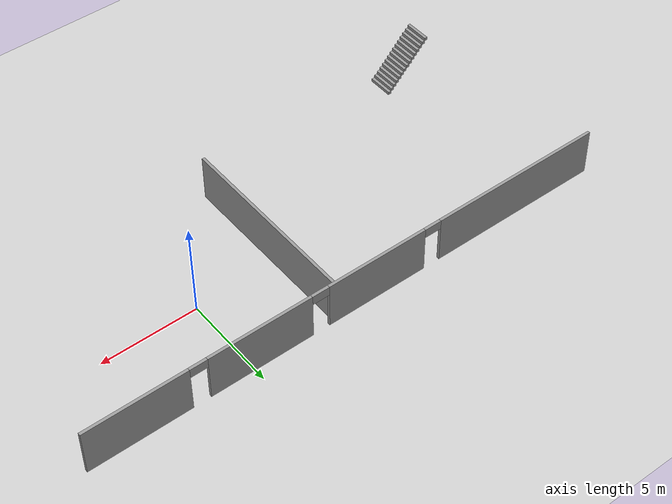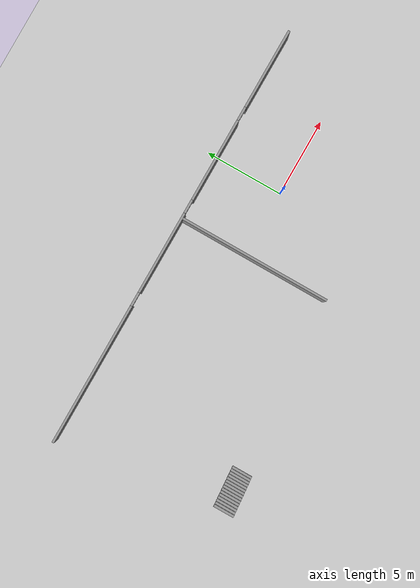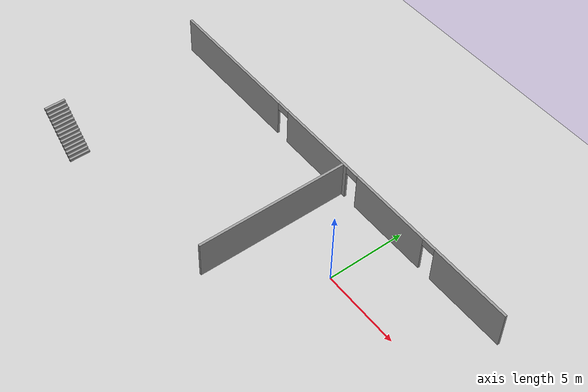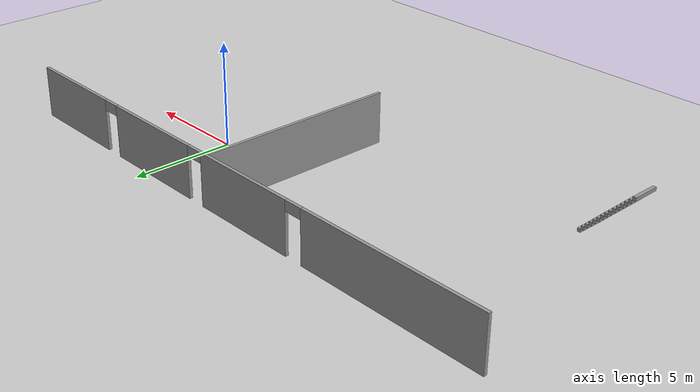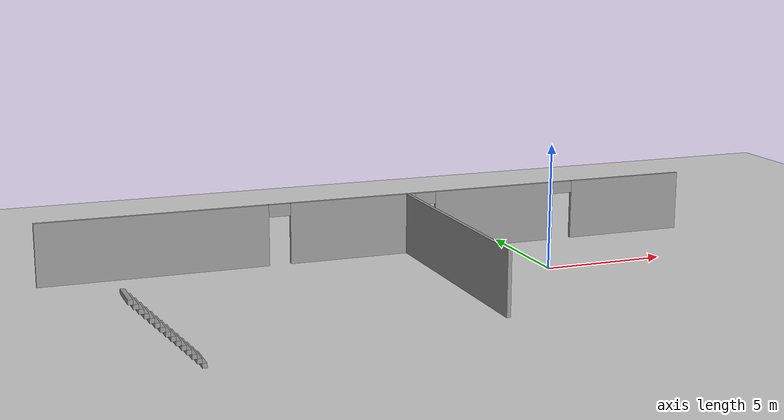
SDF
<sdf version="1.7">
 <world name="default">
  <model name="ground_plane">
   <static>1</static>
   <link name="link">
    <collision name="collision">
     <geometry><plane><normal>0 0 1</normal><size>100 100</size></plane></geometry>
     <surface><friction><ode><mu>100</mu><mu2>50</mu2></ode></friction></surface>
    </collision>
    <visual name="visual">
     <cast_shadows>0</cast_shadows>
     <geometry><plane><normal>0 0 1</normal><size>100 100</size></plane></geometry>
     <material>
      <script><uri>file://media/materials/scripts/gazebo.material</uri><name>Gazebo/Grey</name></script>
     </material>
    </visual>
   </link>
  </model>
  <model name="batimentH">
   <link name="Stairs_1">
    <visual name="Stairs_1_Visual_0">
     <pose>-10.1559 -3.96803 0.083333 0 -0 -1.5708</pose>
     <geometry><box><size>1.32885 0.162742 0.166667</size></box></geometry>
     <material>
      <script><uri>file://media/materials/scripts/gazebo.material</uri><name>Gazebo/Grey</name></script>
      <ambient>1 1 1 1</ambient>
      <shader type="pixel"/>
     </material>
     <meta><layer>0</layer></meta>
    </visual>
    <visual name="Stairs_1_Visual_1">
     <pose>-10.3187 -3.96803 0.25 0 -0 -1.5708</pose>
     <geometry><box><size>1.32885 0.162742 0.166667</size></box></geometry>
     <material>
      <script><uri>file://media/materials/scripts/gazebo.material</uri><name>Gazebo/Grey</name></script>
      <ambient>1 1 1 1</ambient>
      <shader type="pixel"/>
     </material>
     <meta><layer>0</layer></meta>
    </visual>
    <visual name="Stairs_1_Visual_2">
     <pose>-10.4814 -3.96803 0.416667 0 -0 -1.5708</pose>
     <geometry><box><size>1.32885 0.162742 0.166667</size></box></geometry>
     <material>
      <script><uri>file://media/materials/scripts/gazebo.material</uri><name>Gazebo/Grey</name></script>
      <ambient>1 1 1 1</ambient>
      <shader type="pixel"/>
     </material>
     <meta><layer>0</layer></meta>
    </visual>
    <visual name="Stairs_1_Visual_3">
     <pose>-10.6442 -3.96803 0.583333 0 -0 -1.5708</pose>
     <geometry><box><size>1.32885 0.162742 0.166667</size></box></geometry>
     <material>
      <script><uri>file://media/materials/scripts/gazebo.material</uri><name>Gazebo/Grey</name></script>
      <ambient>1 1 1 1</ambient>
      <shader type="pixel"/>
     </material>
     <meta><layer>0</layer></meta>
    </visual>
    <visual name="Stairs_1_Visual_4">
     <pose>-10.8069 -3.96803 0.75 0 -0 -1.5708</pose>
     <geometry><box><size>1.32885 0.162742 0.166667</size></box></geometry>
     <material>
      <script><uri>file://media/materials/scripts/gazebo.material</uri><name>Gazebo/Grey</name></script>
      <ambient>1 1 1 1</ambient>
      <shader type="pixel"/>
     </material>
     <meta><layer>0</layer></meta>
    </visual>
    <visual name="Stairs_1_Visual_5">
     <pose>-10.9697 -3.96803 0.916667 0 -0 -1.5708</pose>
     <geometry><box><size>1.32885 0.162742 0.166667</size></box></geometry>
     <material>
      <script><uri>file://media/materials/scripts/gazebo.material</uri><name>Gazebo/Grey</name></script>
      <ambient>1 1 1 1</ambient>
      <shader type="pixel"/>
     </material>
     <meta><layer>0</layer></meta>
    </visual>
    <visual name="Stairs_1_Visual_6">
     <pose>-11.1324 -3.96803 1.08333 0 -0 -1.5708</pose>
     <geometry><box><size>1.32885 0.162742 0.166667</size></box></geometry>
     <material>
      <script><uri>file://media/materials/scripts/gazebo.material</uri><name>Gazebo/Grey</name></script>
      <ambient>1 1 1 1</ambient>
      <shader type="pixel"/>
     </material>
     <meta><layer>0</layer></meta>
    </visual>
    <visual name="Stairs_1_Visual_7">
     <pose>-11.2951 -3.96803 1.25 0 -0 -1.5708</pose>
     <geometry><box><size>1.32885 0.162742 0.166667</size></box></geometry>
     <material>
      <script><uri>file://media/materials/scripts/gazebo.material</uri><name>Gazebo/Grey</name></script>
      <ambient>1 1 1 1</ambient>
      <shader type="pixel"/>
     </material>
     <meta><layer>0</layer></meta>
    </visual>
    <visual name="Stairs_1_Visual_8">
     <pose>-11.4579 -3.96803 1.41667 0 -0 -1.5708</pose>
     <geometry><box><size>1.32885 0.162742 0.166667</size></box></geometry>
     <material>
      <script><uri>file://media/materials/scripts/gazebo.material</uri><name>Gazebo/Grey</name></script>
      <ambient>1 1 1 1</ambient>
      <shader type="pixel"/>
     </material>
     <meta><layer>0</layer></meta>
    </visual>
    <visual name="Stairs_1_Visual_9">
     <pose>-11.6206 -3.96803 1.58333 0 -0 -1.5708</pose>
     <geometry><box><size>1.32885 0.162742 0.166667</size></box></geometry>
     <material>
      <script><uri>file://media/materials/scripts/gazebo.material</uri><name>Gazebo/Grey</name></script>
      <ambient>1 1 1 1</ambient>
      <shader type="pixel"/>
     </material>
     <meta><layer>0</layer></meta>
    </visual>
    <visual name="Stairs_1_Visual_10">
     <pose>-11.7834 -3.96803 1.75 0 -0 -1.5708</pose>
     <geometry><box><size>1.32885 0.162742 0.166667</size></box></geometry>
     <material>
      <script><uri>file://media/materials/scripts/gazebo.material</uri><name>Gazebo/Grey</name></script>
      <ambient>1 1 1 1</ambient>
      <shader type="pixel"/>
     </material>
     <meta><layer>0</layer></meta>
    </visual>
    <visual name="Stairs_1_Visual_11">
     <pose>-11.9461 -3.96803 1.91667 0 -0 -1.5708</pose>
     <geometry><box><size>1.32885 0.162742 0.166667</size></box></geometry>
     <material>
      <script><uri>file://media/materials/scripts/gazebo.material</uri><name>Gazebo/Grey</name></script>
      <ambient>1 1 1 1</ambient>
      <shader type="pixel"/>
     </material>
     <meta><layer>0</layer></meta>
    </visual>
    <visual name="Stairs_1_Visual_12">
     <pose>-12.1089 -3.96803 2.08333 0 -0 -1.5708</pose>
     <geometry><box><size>1.32885 0.162742 0.166667</size></box></geometry>
     <material>
      <script><uri>file://media/materials/scripts/gazebo.material</uri><name>Gazebo/Grey</name></script>
      <ambient>1 1 1 1</ambient>
      <shader type="pixel"/>
     </material>
     <meta><layer>0</layer></meta>
    </visual>
    <visual name="Stairs_1_Visual_13">
     <pose>-12.2716 -3.96803 2.25 0 -0 -1.5708</pose>
     <geometry><box><size>1.32885 0.162742 0.166667</size></box></geometry>
     <material>
      <script><uri>file://media/materials/scripts/gazebo.material</uri><name>Gazebo/Grey</name></script>
      <ambient>1 1 1 1</ambient>
      <shader type="pixel"/>
     </material>
     <meta><layer>0</layer></meta>
    </visual>
    <visual name="Stairs_1_Visual_14">
     <pose>-12.4343 -3.96803 2.41667 0 -0 -1.5708</pose>
     <geometry><box><size>1.32885 0.162742 0.166667</size></box></geometry>
     <material>
      <script><uri>file://media/materials/scripts/gazebo.material</uri><name>Gazebo/Grey</name></script>
      <ambient>1 1 1 1</ambient>
      <shader type="pixel"/>
     </material>
     <meta><layer>0</layer></meta>
    </visual>
    <collision name="Stairs_1_Collision_0">
     <pose>-10.1559 -3.96803 0.083333 0 0 -1.5708</pose>
     <geometry><box><size>1.32885 0.162742 0.166667</size></box></geometry>
     <surface>
      <friction>
       <ode><mu>1</mu><mu2>1</mu2><fdir1>0 0 0</fdir1><slip1>0</slip1><slip2>0</slip2></ode>
       <torsional>
        <coefficient>1</coefficient>
        <patch_radius>0</patch_radius>
        <surface_radius>0</surface_radius>
        <use_patch_radius>1</use_patch_radius>
        <ode><slip>0</slip></ode>
       </torsional>
      </friction>
      <bounce><restitution_coefficient>0</restitution_coefficient><threshold>1e+06</threshold></bounce>
      <contact>
       <collide_without_contact>0</collide_without_contact>
       <collide_without_contact_bitmask>1</collide_without_contact_bitmask>
       <collide_bitmask>1</collide_bitmask>
       <ode>
        <soft_cfm>0</soft_cfm>
        <soft_erp>0.2</soft_erp>
        <kp>1e+13</kp>
        <kd>1</kd>
        <max_vel>0.01</max_vel>
        <min_depth>0</min_depth>
       </ode>
       <bullet>
        <split_impulse>1</split_impulse>
        <split_impulse_penetration_threshold>-0.01</split_impulse_penetration_threshold>
        <soft_cfm>0</soft_cfm>
        <soft_erp>0.2</soft_erp>
        <kp>1e+13</kp>
        <kd>1</kd>
       </bullet>
      </contact>
     </surface>
    </collision>
    <collision name="Stairs_1_Collision_1">
     <pose>-10.3187 -3.96803 0.25 0 0 -1.5708</pose>
     <geometry><box><size>1.32885 0.162742 0.166667</size></box></geometry>
     <surface>
      <friction>
       <ode><mu>1</mu><mu2>1</mu2><fdir1>0 0 0</fdir1><slip1>0</slip1><slip2>0</slip2></ode>
       <torsional>
        <coefficient>1</coefficient>
        <patch_radius>0</patch_radius>
        <surface_radius>0</surface_radius>
        <use_patch_radius>1</use_patch_radius>
        <ode><slip>0</slip></ode>
       </torsional>
      </friction>
      <bounce><restitution_coefficient>0</restitution_coefficient><threshold>1e+06</threshold></bounce>
      <contact>
       <collide_without_contact>0</collide_without_contact>
       <collide_without_contact_bitmask>1</collide_without_contact_bitmask>
       <collide_bitmask>1</collide_bitmask>
       <ode>
        <soft_cfm>0</soft_cfm>
        <soft_erp>0.2</soft_erp>
        <kp>1e+13</kp>
        <kd>1</kd>
        <max_vel>0.01</max_vel>
        <min_depth>0</min_depth>
       </ode>
       <bullet>
        <split_impulse>1</split_impulse>
        <split_impulse_penetration_threshold>-0.01</split_impulse_penetration_threshold>
        <soft_cfm>0</soft_cfm>
        <soft_erp>0.2</soft_erp>
        <kp>1e+13</kp>
        <kd>1</kd>
       </bullet>
      </contact>
     </surface>
    </collision>
    <collision name="Stairs_1_Collision_2">
     <pose>-10.4814 -3.96803 0.416667 0 0 -1.5708</pose>
     <geometry><box><size>1.32885 0.162742 0.166667</size></box></geometry>
     <surface>
      <friction>
       <ode><mu>1</mu><mu2>1</mu2><fdir1>0 0 0</fdir1><slip1>0</slip1><slip2>0</slip2></ode>
       <torsional>
        <coefficient>1</coefficient>
        <patch_radius>0</patch_radius>
        <surface_radius>0</surface_radius>
        <use_patch_radius>1</use_patch_radius>
        <ode><slip>0</slip></ode>
       </torsional>
      </friction>
      <bounce><restitution_coefficient>0</restitution_coefficient><threshold>1e+06</threshold></bounce>
      <contact>
       <collide_without_contact>0</collide_without_contact>
       <collide_without_contact_bitmask>1</collide_without_contact_bitmask>
       <collide_bitmask>1</collide_bitmask>
       <ode>
        <soft_cfm>0</soft_cfm>
        <soft_erp>0.2</soft_erp>
        <kp>1e+13</kp>
        <kd>1</kd>
        <max_vel>0.01</max_vel>
        <min_depth>0</min_depth>
       </ode>
       <bullet>
        <split_impulse>1</split_impulse>
        <split_impulse_penetration_threshold>-0.01</split_impulse_penetration_threshold>
        <soft_cfm>0</soft_cfm>
        <soft_erp>0.2</soft_erp>
        <kp>1e+13</kp>
        <kd>1</kd>
       </bullet>
      </contact>
     </surface>
    </collision>
    <collision name="Stairs_1_Collision_3">
     <pose>-10.6442 -3.96803 0.583333 0 0 -1.5708</pose>
     <geometry><box><size>1.32885 0.162742 0.166667</size></box></geometry>
     <surface>
      <friction>
       <ode><mu>1</mu><mu2>1</mu2><fdir1>0 0 0</fdir1><slip1>0</slip1><slip2>0</slip2></ode>
       <torsional>
        <coefficient>1</coefficient>
        <patch_radius>0</patch_radius>
        <surface_radius>0</surface_radius>
        <use_patch_radius>1</use_patch_radius>
        <ode><slip>0</slip></ode>
       </torsional>
      </friction>
      <bounce><restitution_coefficient>0</restitution_coefficient><threshold>1e+06</threshold></bounce>
      <contact>
       <collide_without_contact>0</collide_without_contact>
       <collide_without_contact_bitmask>1</collide_without_contact_bitmask>
       <collide_bitmask>1</collide_bitmask>
       <ode>
        <soft_cfm>0</soft_cfm>
        <soft_erp>0.2</soft_erp>
        <kp>1e+13</kp>
        <kd>1</kd>
        <max_vel>0.01</max_vel>
        <min_depth>0</min_depth>
       </ode>
       <bullet>
        <split_impulse>1</split_impulse>
        <split_impulse_penetration_threshold>-0.01</split_impulse_penetration_threshold>
        <soft_cfm>0</soft_cfm>
        <soft_erp>0.2</soft_erp>
        <kp>1e+13</kp>
        <kd>1</kd>
       </bullet>
      </contact>
     </surface>
    </collision>
    <collision name="Stairs_1_Collision_4">
     <pose>-10.8069 -3.96803 0.75 0 0 -1.5708</pose>
     <geometry><box><size>1.32885 0.162742 0.166667</size></box></geometry>
     <surface>
      <friction>
       <ode><mu>1</mu><mu2>1</mu2><fdir1>0 0 0</fdir1><slip1>0</slip1><slip2>0</slip2></ode>
       <torsional>
        <coefficient>1</coefficient>
        <patch_radius>0</patch_radius>
        <surface_radius>0</surface_radius>
        <use_patch_radius>1</use_patch_radius>
        <ode><slip>0</slip></ode>
       </torsional>
      </friction>
      <bounce><restitution_coefficient>0</restitution_coefficient><threshold>1e+06</threshold></bounce>
      <contact>
       <collide_without_contact>0</collide_without_contact>
       <collide_without_contact_bitmask>1</collide_without_contact_bitmask>
       <collide_bitmask>1</collide_bitmask>
       <ode>
        <soft_cfm>0</soft_cfm>
        <soft_erp>0.2</soft_erp>
        <kp>1e+13</kp>
        <kd>1</kd>
        <max_vel>0.01</max_vel>
        <min_depth>0</min_depth>
       </ode>
       <bullet>
        <split_impulse>1</split_impulse>
        <split_impulse_penetration_threshold>-0.01</split_impulse_penetration_threshold>
        <soft_cfm>0</soft_cfm>
        <soft_erp>0.2</soft_erp>
        <kp>1e+13</kp>
        <kd>1</kd>
       </bullet>
      </contact>
     </surface>
    </collision>
    <collision name="Stairs_1_Collision_5">
     <pose>-10.9697 -3.96803 0.916667 0 0 -1.5708</pose>
     <geometry><box><size>1.32885 0.162742 0.166667</size></box></geometry>
     <surface>
      <friction>
       <ode><mu>1</mu><mu2>1</mu2><fdir1>0 0 0</fdir1><slip1>0</slip1><slip2>0</slip2></ode>
       <torsional>
        <coefficient>1</coefficient>
        <patch_radius>0</patch_radius>
        <surface_radius>0</surface_radius>
        <use_patch_radius>1</use_patch_radius>
        <ode><slip>0</slip></ode>
       </torsional>
      </friction>
      <bounce><restitution_coefficient>0</restitution_coefficient><threshold>1e+06</threshold></bounce>
      <contact>
       <collide_without_contact>0</collide_without_contact>
       <collide_without_contact_bitmask>1</collide_without_contact_bitmask>
       <collide_bitmask>1</collide_bitmask>
       <ode>
        <soft_cfm>0</soft_cfm>
        <soft_erp>0.2</soft_erp>
        <kp>1e+13</kp>
        <kd>1</kd>
        <max_vel>0.01</max_vel>
        <min_depth>0</min_depth>
       </ode>
       <bullet>
        <split_impulse>1</split_impulse>
        <split_impulse_penetration_threshold>-0.01</split_impulse_penetration_threshold>
        <soft_cfm>0</soft_cfm>
        <soft_erp>0.2</soft_erp>
        <kp>1e+13</kp>
        <kd>1</kd>
       </bullet>
      </contact>
     </surface>
    </collision>
    <collision name="Stairs_1_Collision_6">
     <pose>-11.1324 -3.96803 1.08333 0 0 -1.5708</pose>
     <geometry><box><size>1.32885 0.162742 0.166667</size></box></geometry>
     <surface>
      <friction>
       <ode><mu>1</mu><mu2>1</mu2><fdir1>0 0 0</fdir1><slip1>0</slip1><slip2>0</slip2></ode>
       <torsional>
        <coefficient>1</coefficient>
        <patch_radius>0</patch_radius>
        <surface_radius>0</surface_radius>
        <use_patch_radius>1</use_patch_radius>
        <ode><slip>0</slip></ode>
       </torsional>
      </friction>
      <bounce><restitution_coefficient>0</restitution_coefficient><threshold>1e+06</threshold></bounce>
      <contact>
       <collide_without_contact>0</collide_without_contact>
       <collide_without_contact_bitmask>1</collide_without_contact_bitmask>
       <collide_bitmask>1</collide_bitmask>
       <ode>
        <soft_cfm>0</soft_cfm>
        <soft_erp>0.2</soft_erp>
        <kp>1e+13</kp>
        <kd>1</kd>
        <max_vel>0.01</max_vel>
        <min_depth>0</min_depth>
       </ode>
       <bullet>
        <split_impulse>1</split_impulse>
        <split_impulse_penetration_threshold>-0.01</split_impulse_penetration_threshold>
        <soft_cfm>0</soft_cfm>
        <soft_erp>0.2</soft_erp>
        <kp>1e+13</kp>
        <kd>1</kd>
       </bullet>
      </contact>
     </surface>
    </collision>
    <collision name="Stairs_1_Collision_7">
     <pose>-11.2951 -3.96803 1.25 0 0 -1.5708</pose>
     <geometry><box><size>1.32885 0.162742 0.166667</size></box></geometry>
     <surface>
      <friction>
       <ode><mu>1</mu><mu2>1</mu2><fdir1>0 0 0</fdir1><slip1>0</slip1><slip2>0</slip2></ode>
       <torsional>
        <coefficient>1</coefficient>
        <patch_radius>0</patch_radius>
        <surface_radius>0</surface_radius>
        <use_patch_radius>1</use_patch_radius>
        <ode><slip>0</slip></ode>
       </torsional>
      </friction>
      <bounce><restitution_coefficient>0</restitution_coefficient><threshold>1e+06</threshold></bounce>
      <contact>
       <collide_without_contact>0</collide_without_contact>
       <collide_without_contact_bitmask>1</collide_without_contact_bitmask>
       <collide_bitmask>1</collide_bitmask>
       <ode>
        <soft_cfm>0</soft_cfm>
        <soft_erp>0.2</soft_erp>
        <kp>1e+13</kp>
        <kd>1</kd>
        <max_vel>0.01</max_vel>
        <min_depth>0</min_depth>
       </ode>
       <bullet>
        <split_impulse>1</split_impulse>
        <split_impulse_penetration_threshold>-0.01</split_impulse_penetration_threshold>
        <soft_cfm>0</soft_cfm>
        <soft_erp>0.2</soft_erp>
        <kp>1e+13</kp>
        <kd>1</kd>
       </bullet>
      </contact>
     </surface>
    </collision>
    <collision name="Stairs_1_Collision_8">
     <pose>-11.4579 -3.96803 1.41667 0 0 -1.5708</pose>
     <geometry><box><size>1.32885 0.162742 0.166667</size></box></geometry>
     <surface>
      <friction>
       <ode><mu>1</mu><mu2>1</mu2><fdir1>0 0 0</fdir1><slip1>0</slip1><slip2>0</slip2></ode>
       <torsional>
        <coefficient>1</coefficient>
        <patch_radius>0</patch_radius>
        <surface_radius>0</surface_radius>
        <use_patch_radius>1</use_patch_radius>
        <ode><slip>0</slip></ode>
       </torsional>
      </friction>
      <bounce><restitution_coefficient>0</restitution_coefficient><threshold>1e+06</threshold></bounce>
      <contact>
       <collide_without_contact>0</collide_without_contact>
       <collide_without_contact_bitmask>1</collide_without_contact_bitmask>
       <collide_bitmask>1</collide_bitmask>
       <ode>
        <soft_cfm>0</soft_cfm>
        <soft_erp>0.2</soft_erp>
        <kp>1e+13</kp>
        <kd>1</kd>
        <max_vel>0.01</max_vel>
        <min_depth>0</min_depth>
       </ode>
       <bullet>
        <split_impulse>1</split_impulse>
        <split_impulse_penetration_threshold>-0.01</split_impulse_penetration_threshold>
        <soft_cfm>0</soft_cfm>
        <soft_erp>0.2</soft_erp>
        <kp>1e+13</kp>
        <kd>1</kd>
       </bullet>
      </contact>
     </surface>
    </collision>
    <collision name="Stairs_1_Collision_10">
     <pose>-11.7834 -3.96803 1.75 0 0 -1.5708</pose>
     <geometry><box><size>1.32885 0.162742 0.166667</size></box></geometry>
     <surface>
      <friction>
       <ode><mu>1</mu><mu2>1</mu2><fdir1>0 0 0</fdir1><slip1>0</slip1><slip2>0</slip2></ode>
       <torsional>
        <coefficient>1</coefficient>
        <patch_radius>0</patch_radius>
        <surface_radius>0</surface_radius>
        <use_patch_radius>1</use_patch_radius>
        <ode><slip>0</slip></ode>
       </torsional>
      </friction>
      <bounce><restitution_coefficient>0</restitution_coefficient><threshold>1e+06</threshold></bounce>
      <contact>
       <collide_without_contact>0</collide_without_contact>
       <collide_without_contact_bitmask>1</collide_without_contact_bitmask>
       <collide_bitmask>1</collide_bitmask>
       <ode>
        <soft_cfm>0</soft_cfm>
        <soft_erp>0.2</soft_erp>
        <kp>1e+13</kp>
        <kd>1</kd>
        <max_vel>0.01</max_vel>
        <min_depth>0</min_depth>
       </ode>
       <bullet>
        <split_impulse>1</split_impulse>
        <split_impulse_penetration_threshold>-0.01</split_impulse_penetration_threshold>
        <soft_cfm>0</soft_cfm>
        <soft_erp>0.2</soft_erp>
        <kp>1e+13</kp>
        <kd>1</kd>
       </bullet>
      </contact>
     </surface>
    </collision>
    <collision name="Stairs_1_Collision_9">
     <pose>-11.6206 -3.96803 1.58333 0 0 -1.5708</pose>
     <geometry><box><size>1.32885 0.162742 0.166667</size></box></geometry>
     <surface>
      <friction>
       <ode><mu>1</mu><mu2>1</mu2><fdir1>0 0 0</fdir1><slip1>0</slip1><slip2>0</slip2></ode>
       <torsional>
        <coefficient>1</coefficient>
        <patch_radius>0</patch_radius>
        <surface_radius>0</surface_radius>
        <use_patch_radius>1</use_patch_radius>
        <ode><slip>0</slip></ode>
       </torsional>
      </friction>
      <bounce><restitution_coefficient>0</restitution_coefficient><threshold>1e+06</threshold></bounce>
      <contact>
       <collide_without_contact>0</collide_without_contact>
       <collide_without_contact_bitmask>1</collide_without_contact_bitmask>
       <collide_bitmask>1</collide_bitmask>
       <ode>
        <soft_cfm>0</soft_cfm>
        <soft_erp>0.2</soft_erp>
        <kp>1e+13</kp>
        <kd>1</kd>
        <max_vel>0.01</max_vel>
        <min_depth>0</min_depth>
       </ode>
       <bullet>
        <split_impulse>1</split_impulse>
        <split_impulse_penetration_threshold>-0.01</split_impulse_penetration_threshold>
        <soft_cfm>0</soft_cfm>
        <soft_erp>0.2</soft_erp>
        <kp>1e+13</kp>
        <kd>1</kd>
       </bullet>
      </contact>
     </surface>
    </collision>
    <collision name="Stairs_1_Collision_11">
     <pose>-11.9461 -3.96803 1.91667 0 0 -1.5708</pose>
     <geometry><box><size>1.32885 0.162742 0.166667</size></box></geometry>
     <surface>
      <friction>
       <ode><mu>1</mu><mu2>1</mu2><fdir1>0 0 0</fdir1><slip1>0</slip1><slip2>0</slip2></ode>
       <torsional>
        <coefficient>1</coefficient>
        <patch_radius>0</patch_radius>
        <surface_radius>0</surface_radius>
        <use_patch_radius>1</use_patch_radius>
        <ode><slip>0</slip></ode>
       </torsional>
      </friction>
      <bounce><restitution_coefficient>0</restitution_coefficient><threshold>1e+06</threshold></bounce>
      <contact>
       <collide_without_contact>0</collide_without_contact>
       <collide_without_contact_bitmask>1</collide_without_contact_bitmask>
       <collide_bitmask>1</collide_bitmask>
       <ode>
        <soft_cfm>0</soft_cfm>
        <soft_erp>0.2</soft_erp>
        <kp>1e+13</kp>
        <kd>1</kd>
        <max_vel>0.01</max_vel>
        <min_depth>0</min_depth>
       </ode>
       <bullet>
        <split_impulse>1</split_impulse>
        <split_impulse_penetration_threshold>-0.01</split_impulse_penetration_threshold>
        <soft_cfm>0</soft_cfm>
        <soft_erp>0.2</soft_erp>
        <kp>1e+13</kp>
        <kd>1</kd>
       </bullet>
      </contact>
     </surface>
    </collision>
    <collision name="Stairs_1_Collision_12">
     <pose>-12.1089 -3.96803 2.08333 0 0 -1.5708</pose>
     <geometry><box><size>1.32885 0.162742 0.166667</size></box></geometry>
     <surface>
      <friction>
       <ode><mu>1</mu><mu2>1</mu2><fdir1>0 0 0</fdir1><slip1>0</slip1><slip2>0</slip2></ode>
       <torsional>
        <coefficient>1</coefficient>
        <patch_radius>0</patch_radius>
        <surface_radius>0</surface_radius>
        <use_patch_radius>1</use_patch_radius>
        <ode><slip>0</slip></ode>
       </torsional>
      </friction>
      <bounce><restitution_coefficient>0</restitution_coefficient><threshold>1e+06</threshold></bounce>
      <contact>
       <collide_without_contact>0</collide_without_contact>
       <collide_without_contact_bitmask>1</collide_without_contact_bitmask>
       <collide_bitmask>1</collide_bitmask>
       <ode>
        <soft_cfm>0</soft_cfm>
        <soft_erp>0.2</soft_erp>
        <kp>1e+13</kp>
        <kd>1</kd>
        <max_vel>0.01</max_vel>
        <min_depth>0</min_depth>
       </ode>
       <bullet>
        <split_impulse>1</split_impulse>
        <split_impulse_penetration_threshold>-0.01</split_impulse_penetration_threshold>
        <soft_cfm>0</soft_cfm>
        <soft_erp>0.2</soft_erp>
        <kp>1e+13</kp>
        <kd>1</kd>
       </bullet>
      </contact>
     </surface>
    </collision>
    <collision name="Stairs_1_Collision_13">
     <pose>-12.2716 -3.96803 2.25 0 0 -1.5708</pose>
     <geometry><box><size>1.32885 0.162742 0.166667</size></box></geometry>
     <surface>
      <friction>
       <ode><mu>1</mu><mu2>1</mu2><fdir1>0 0 0</fdir1><slip1>0</slip1><slip2>0</slip2></ode>
       <torsional>
        <coefficient>1</coefficient>
        <patch_radius>0</patch_radius>
        <surface_radius>0</surface_radius>
        <use_patch_radius>1</use_patch_radius>
        <ode><slip>0</slip></ode>
       </torsional>
      </friction>
      <bounce><restitution_coefficient>0</restitution_coefficient><threshold>1e+06</threshold></bounce>
      <contact>
       <collide_without_contact>0</collide_without_contact>
       <collide_without_contact_bitmask>1</collide_without_contact_bitmask>
       <collide_bitmask>1</collide_bitmask>
       <ode>
        <soft_cfm>0</soft_cfm>
        <soft_erp>0.2</soft_erp>
        <kp>1e+13</kp>
        <kd>1</kd>
        <max_vel>0.01</max_vel>
        <min_depth>0</min_depth>
       </ode>
       <bullet>
        <split_impulse>1</split_impulse>
        <split_impulse_penetration_threshold>-0.01</split_impulse_penetration_threshold>
        <soft_cfm>0</soft_cfm>
        <soft_erp>0.2</soft_erp>
        <kp>1e+13</kp>
        <kd>1</kd>
       </bullet>
      </contact>
     </surface>
    </collision>
    <collision name="Stairs_1_Collision_14">
     <pose>-12.4343 -3.96803 2.41667 0 0 -1.5708</pose>
     <geometry><box><size>1.32885 0.162742 0.166667</size></box></geometry>
     <surface>
      <friction>
       <ode><mu>1</mu><mu2>1</mu2><fdir1>0 0 0</fdir1><slip1>0</slip1><slip2>0</slip2></ode>
       <torsional>
        <coefficient>1</coefficient>
        <patch_radius>0</patch_radius>
        <surface_radius>0</surface_radius>
        <use_patch_radius>1</use_patch_radius>
        <ode><slip>0</slip></ode>
       </torsional>
      </friction>
      <bounce><restitution_coefficient>0</restitution_coefficient><threshold>1e+06</threshold></bounce>
      <contact>
       <collide_without_contact>0</collide_without_contact>
       <collide_without_contact_bitmask>1</collide_without_contact_bitmask>
       <collide_bitmask>1</collide_bitmask>
       <ode>
        <soft_cfm>0</soft_cfm>
        <soft_erp>0.2</soft_erp>
        <kp>1e+13</kp>
        <kd>1</kd>
        <max_vel>0.01</max_vel>
        <min_depth>0</min_depth>
       </ode>
       <bullet>
        <split_impulse>1</split_impulse>
        <split_impulse_penetration_threshold>-0.01</split_impulse_penetration_threshold>
        <soft_cfm>0</soft_cfm>
        <soft_erp>0.2</soft_erp>
        <kp>1e+13</kp>
        <kd>1</kd>
       </bullet>
      </contact>
     </surface>
    </collision>
   </link>
   <link name="Wall_0">
    <pose>0.006105 6.66605 0 0 -0 3.1407</pose>
    <visual name="Wall_0_Visual_0">
     <pose>-11.3504 0 1.25 0 -0 0</pose>
     <geometry><box><size>5.217 0.15 2.5</size></box></geometry>
     <material>
      <script><uri>file://media/materials/scripts/gazebo.material</uri><name>Gazebo/Grey</name></script>
      <ambient>1 1 1 1</ambient>
      <shader type="pixel"/>
     </material>
     <meta><layer>0</layer></meta>
    </visual>
    <visual name="Wall_0_Visual_1">
     <pose>-5.13636 0 1.25 0 -0 0</pose>
     <geometry><box><size>5.41105 0.15 2.5</size></box></geometry>
     <material>
      <script><uri>file://media/materials/scripts/gazebo.material</uri><name>Gazebo/Grey</name></script>
      <ambient>1 1 1 1</ambient>
      <shader type="pixel"/>
     </material>
     <meta><layer>0</layer></meta>
    </visual>
    <visual name="Wall_0_Visual_2">
     <pose>1.1607 0 1.25 0 -0 0</pose>
     <geometry><box><size>5.38305 0.15 2.5</size></box></geometry>
     <material>
      <script><uri>file://media/materials/scripts/gazebo.material</uri><name>Gazebo/Grey</name></script>
      <ambient>1 1 1 1</ambient>
      <shader type="pixel"/>
     </material>
     <meta><layer>0</layer></meta>
    </visual>
    <visual name="Wall_0_Visual_3">
     <pose>9.35555 0 1.25 0 -0 0</pose>
     <geometry><box><size>9.20665 0.15 2.5</size></box></geometry>
     <material>
      <script><uri>file://media/materials/scripts/gazebo.material</uri><name>Gazebo/Grey</name></script>
      <ambient>1 1 1 1</ambient>
      <shader type="pixel"/>
     </material>
     <meta><layer>0</layer></meta>
    </visual>
    <visual name="Wall_0_Visual_4">
     <pose>-8.29188 0 2.25 0 -0 0</pose>
     <geometry><box><size>0.9 0.15 0.5</size></box></geometry>
     <material>
      <script><uri>file://media/materials/scripts/gazebo.material</uri><name>Gazebo/Grey</name></script>
      <ambient>1 1 1 1</ambient>
      <shader type="pixel"/>
     </material>
     <meta><layer>0</layer></meta>
    </visual>
    <visual name="Wall_0_Visual_5">
     <pose>-1.98083 0 2.25 0 -0 0</pose>
     <geometry><box><size>0.9 0.15 0.5</size></box></geometry>
     <material>
      <script><uri>file://media/materials/scripts/gazebo.material</uri><name>Gazebo/Grey</name></script>
      <ambient>1 1 1 1</ambient>
      <shader type="pixel"/>
     </material>
     <meta><layer>0</layer></meta>
    </visual>
    <visual name="Wall_0_Visual_6">
     <pose>4.30223 0 2.25 0 -0 0</pose>
     <geometry><box><size>0.9 0.15 0.5</size></box></geometry>
     <material>
      <script><uri>file://media/materials/scripts/gazebo.material</uri><name>Gazebo/Grey</name></script>
      <ambient>1 1 1 1</ambient>
      <shader type="pixel"/>
     </material>
     <meta><layer>0</layer></meta>
    </visual>
    <collision name="Wall_0_Collision_0">
     <pose>-11.3504 0 1.25 0 -0 0</pose>
     <geometry><box><size>5.217 0.15 2.5</size></box></geometry>
     <surface>
      <friction>
       <ode><mu>1</mu><mu2>1</mu2><fdir1>0 0 0</fdir1><slip1>0</slip1><slip2>0</slip2></ode>
       <torsional>
        <coefficient>1</coefficient>
        <patch_radius>0</patch_radius>
        <surface_radius>0</surface_radius>
        <use_patch_radius>1</use_patch_radius>
        <ode><slip>0</slip></ode>
       </torsional>
      </friction>
      <bounce><restitution_coefficient>0</restitution_coefficient><threshold>1e+06</threshold></bounce>
      <contact>
       <collide_without_contact>0</collide_without_contact>
       <collide_without_contact_bitmask>1</collide_without_contact_bitmask>
       <collide_bitmask>1</collide_bitmask>
       <ode>
        <soft_cfm>0</soft_cfm>
        <soft_erp>0.2</soft_erp>
        <kp>1e+13</kp>
        <kd>1</kd>
        <max_vel>0.01</max_vel>
        <min_depth>0</min_depth>
       </ode>
       <bullet>
        <split_impulse>1</split_impulse>
        <split_impulse_penetration_threshold>-0.01</split_impulse_penetration_threshold>
        <soft_cfm>0</soft_cfm>
        <soft_erp>0.2</soft_erp>
        <kp>1e+13</kp>
        <kd>1</kd>
       </bullet>
      </contact>
     </surface>
    </collision>
    <collision name="Wall_0_Collision_1">
     <pose>-5.13636 0 1.25 0 -0 0</pose>
     <geometry><box><size>5.41105 0.15 2.5</size></box></geometry>
     <surface>
      <friction>
       <ode><mu>1</mu><mu2>1</mu2><fdir1>0 0 0</fdir1><slip1>0</slip1><slip2>0</slip2></ode>
       <torsional>
        <coefficient>1</coefficient>
        <patch_radius>0</patch_radius>
        <surface_radius>0</surface_radius>
        <use_patch_radius>1</use_patch_radius>
        <ode><slip>0</slip></ode>
       </torsional>
      </friction>
      <bounce><restitution_coefficient>0</restitution_coefficient><threshold>1e+06</threshold></bounce>
      <contact>
       <collide_without_contact>0</collide_without_contact>
       <collide_without_contact_bitmask>1</collide_without_contact_bitmask>
       <collide_bitmask>1</collide_bitmask>
       <ode>
        <soft_cfm>0</soft_cfm>
        <soft_erp>0.2</soft_erp>
        <kp>1e+13</kp>
        <kd>1</kd>
        <max_vel>0.01</max_vel>
        <min_depth>0</min_depth>
       </ode>
       <bullet>
        <split_impulse>1</split_impulse>
        <split_impulse_penetration_threshold>-0.01</split_impulse_penetration_threshold>
        <soft_cfm>0</soft_cfm>
        <soft_erp>0.2</soft_erp>
        <kp>1e+13</kp>
        <kd>1</kd>
       </bullet>
      </contact>
     </surface>
    </collision>
    <collision name="Wall_0_Collision_2">
     <pose>1.1607 0 1.25 0 -0 0</pose>
     <geometry><box><size>5.38305 0.15 2.5</size></box></geometry>
     <surface>
      <friction>
       <ode><mu>1</mu><mu2>1</mu2><fdir1>0 0 0</fdir1><slip1>0</slip1><slip2>0</slip2></ode>
       <torsional>
        <coefficient>1</coefficient>
        <patch_radius>0</patch_radius>
        <surface_radius>0</surface_radius>
        <use_patch_radius>1</use_patch_radius>
        <ode><slip>0</slip></ode>
       </torsional>
      </friction>
      <bounce><restitution_coefficient>0</restitution_coefficient><threshold>1e+06</threshold></bounce>
      <contact>
       <collide_without_contact>0</collide_without_contact>
       <collide_without_contact_bitmask>1</collide_without_contact_bitmask>
       <collide_bitmask>1</collide_bitmask>
       <ode>
        <soft_cfm>0</soft_cfm>
        <soft_erp>0.2</soft_erp>
        <kp>1e+13</kp>
        <kd>1</kd>
        <max_vel>0.01</max_vel>
        <min_depth>0</min_depth>
       </ode>
       <bullet>
        <split_impulse>1</split_impulse>
        <split_impulse_penetration_threshold>-0.01</split_impulse_penetration_threshold>
        <soft_cfm>0</soft_cfm>
        <soft_erp>0.2</soft_erp>
        <kp>1e+13</kp>
        <kd>1</kd>
       </bullet>
      </contact>
     </surface>
    </collision>
    <collision name="Wall_0_Collision_3">
     <pose>9.35555 0 1.25 0 -0 0</pose>
     <geometry><box><size>9.20665 0.15 2.5</size></box></geometry>
     <surface>
      <friction>
       <ode><mu>1</mu><mu2>1</mu2><fdir1>0 0 0</fdir1><slip1>0</slip1><slip2>0</slip2></ode>
       <torsional>
        <coefficient>1</coefficient>
        <patch_radius>0</patch_radius>
        <surface_radius>0</surface_radius>
        <use_patch_radius>1</use_patch_radius>
        <ode><slip>0</slip></ode>
       </torsional>
      </friction>
      <bounce><restitution_coefficient>0</restitution_coefficient><threshold>1e+06</threshold></bounce>
      <contact>
       <collide_without_contact>0</collide_without_contact>
       <collide_without_contact_bitmask>1</collide_without_contact_bitmask>
       <collide_bitmask>1</collide_bitmask>
       <ode>
        <soft_cfm>0</soft_cfm>
        <soft_erp>0.2</soft_erp>
        <kp>1e+13</kp>
        <kd>1</kd>
        <max_vel>0.01</max_vel>
        <min_depth>0</min_depth>
       </ode>
       <bullet>
        <split_impulse>1</split_impulse>
        <split_impulse_penetration_threshold>-0.01</split_impulse_penetration_threshold>
        <soft_cfm>0</soft_cfm>
        <soft_erp>0.2</soft_erp>
        <kp>1e+13</kp>
        <kd>1</kd>
       </bullet>
      </contact>
     </surface>
    </collision>
    <collision name="Wall_0_Collision_4">
     <pose>-8.29188 0 2.25 0 -0 0</pose>
     <geometry><box><size>0.9 0.15 0.5</size></box></geometry>
     <surface>
      <friction>
       <ode><mu>1</mu><mu2>1</mu2><fdir1>0 0 0</fdir1><slip1>0</slip1><slip2>0</slip2></ode>
       <torsional>
        <coefficient>1</coefficient>
        <patch_radius>0</patch_radius>
        <surface_radius>0</surface_radius>
        <use_patch_radius>1</use_patch_radius>
        <ode><slip>0</slip></ode>
       </torsional>
      </friction>
      <bounce><restitution_coefficient>0</restitution_coefficient><threshold>1e+06</threshold></bounce>
      <contact>
       <collide_without_contact>0</collide_without_contact>
       <collide_without_contact_bitmask>1</collide_without_contact_bitmask>
       <collide_bitmask>1</collide_bitmask>
       <ode>
        <soft_cfm>0</soft_cfm>
        <soft_erp>0.2</soft_erp>
        <kp>1e+13</kp>
        <kd>1</kd>
        <max_vel>0.01</max_vel>
        <min_depth>0</min_depth>
       </ode>
       <bullet>
        <split_impulse>1</split_impulse>
        <split_impulse_penetration_threshold>-0.01</split_impulse_penetration_threshold>
        <soft_cfm>0</soft_cfm>
        <soft_erp>0.2</soft_erp>
        <kp>1e+13</kp>
        <kd>1</kd>
       </bullet>
      </contact>
     </surface>
    </collision>
    <collision name="Wall_0_Collision_5">
     <pose>-1.98083 0 2.25 0 -0 0</pose>
     <geometry><box><size>0.9 0.15 0.5</size></box></geometry>
     <surface>
      <friction>
       <ode><mu>1</mu><mu2>1</mu2><fdir1>0 0 0</fdir1><slip1>0</slip1><slip2>0</slip2></ode>
       <torsional>
        <coefficient>1</coefficient>
        <patch_radius>0</patch_radius>
        <surface_radius>0</surface_radius>
        <use_patch_radius>1</use_patch_radius>
        <ode><slip>0</slip></ode>
       </torsional>
      </friction>
      <bounce><restitution_coefficient>0</restitution_coefficient><threshold>1e+06</threshold></bounce>
      <contact>
       <collide_without_contact>0</collide_without_contact>
       <collide_without_contact_bitmask>1</collide_without_contact_bitmask>
       <collide_bitmask>1</collide_bitmask>
       <ode>
        <soft_cfm>0</soft_cfm>
        <soft_erp>0.2</soft_erp>
        <kp>1e+13</kp>
        <kd>1</kd>
        <max_vel>0.01</max_vel>
        <min_depth>0</min_depth>
       </ode>
       <bullet>
        <split_impulse>1</split_impulse>
        <split_impulse_penetration_threshold>-0.01</split_impulse_penetration_threshold>
        <soft_cfm>0</soft_cfm>
        <soft_erp>0.2</soft_erp>
        <kp>1e+13</kp>
        <kd>1</kd>
       </bullet>
      </contact>
     </surface>
    </collision>
    <collision name="Wall_0_Collision_6">
     <pose>4.30223 0 2.25 0 -0 0</pose>
     <geometry><box><size>0.9 0.15 0.5</size></box></geometry>
     <surface>
      <friction>
       <ode><mu>1</mu><mu2>1</mu2><fdir1>0 0 0</fdir1><slip1>0</slip1><slip2>0</slip2></ode>
       <torsional>
        <coefficient>1</coefficient>
        <patch_radius>0</patch_radius>
        <surface_radius>0</surface_radius>
        <use_patch_radius>1</use_patch_radius>
        <ode><slip>0</slip></ode>
       </torsional>
      </friction>
      <bounce><restitution_coefficient>0</restitution_coefficient><threshold>1e+06</threshold></bounce>
      <contact>
       <collide_without_contact>0</collide_without_contact>
       <collide_without_contact_bitmask>1</collide_without_contact_bitmask>
       <collide_bitmask>1</collide_bitmask>
       <ode>
        <soft_cfm>0</soft_cfm>
        <soft_erp>0.2</soft_erp>
        <kp>1e+13</kp>
        <kd>1</kd>
        <max_vel>0.01</max_vel>
        <min_depth>0</min_depth>
       </ode>
       <bullet>
        <split_impulse>1</split_impulse>
        <split_impulse_penetration_threshold>-0.01</split_impulse_penetration_threshold>
        <soft_cfm>0</soft_cfm>
        <soft_erp>0.2</soft_erp>
        <kp>1e+13</kp>
        <kd>1</kd>
       </bullet>
      </contact>
     </surface>
    </collision>
   </link>
   <link name="Wall_35">
    <pose>1.21538 1.74857 0 0 0 -1.5708</pose>
    <visual name="Wall_35_Visual">
     <pose>0 0 1.25 0 -0 0</pose>
     <geometry><box><size>9.75 0.15 2.5</size></box></geometry>
     <material>
      <script><uri>file://media/materials/scripts/gazebo.material</uri><name>Gazebo/Grey</name></script>
      <ambient>1 1 1 1</ambient>
      <shader type="pixel"/>
     </material>
     <meta><layer>0</layer></meta>
    </visual>
    <collision name="Wall_35_Collision">
     <pose>0 0 1.25 0 -0 0</pose>
     <geometry><box><size>9.75 0.15 2.5</size></box></geometry>
     <surface>
      <friction>
       <ode><mu>1</mu><mu2>1</mu2><fdir1>0 0 0</fdir1><slip1>0</slip1><slip2>0</slip2></ode>
       <torsional>
        <coefficient>1</coefficient>
        <patch_radius>0</patch_radius>
        <surface_radius>0</surface_radius>
        <use_patch_radius>1</use_patch_radius>
        <ode><slip>0</slip></ode>
       </torsional>
      </friction>
      <bounce><restitution_coefficient>0</restitution_coefficient><threshold>1e+06</threshold></bounce>
      <contact>
       <collide_without_contact>0</collide_without_contact>
       <collide_without_contact_bitmask>1</collide_without_contact_bitmask>
       <collide_bitmask>1</collide_bitmask>
       <ode>
        <soft_cfm>0</soft_cfm>
        <soft_erp>0.2</soft_erp>
        <kp>1e+13</kp>
        <kd>1</kd>
        <max_vel>0.01</max_vel>
        <min_depth>0</min_depth>
       </ode>
       <bullet>
        <split_impulse>1</split_impulse>
        <split_impulse_penetration_threshold>-0.01</split_impulse_penetration_threshold>
        <soft_cfm>0</soft_cfm>
        <soft_erp>0.2</soft_erp>
        <kp>1e+13</kp>
        <kd>1</kd>
       </bullet>
      </contact>
     </surface>
    </collision>
   </link>
   <static>1</static>
   <pose>-5.57165 -2.33842 0 0 -0 0</pose>
  </model>
 </world>
</sdf>
